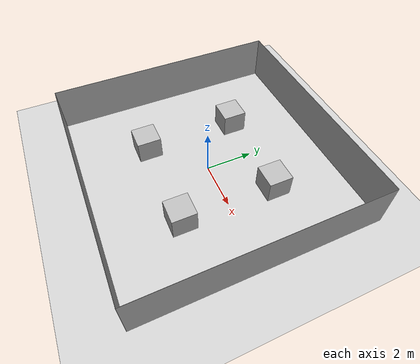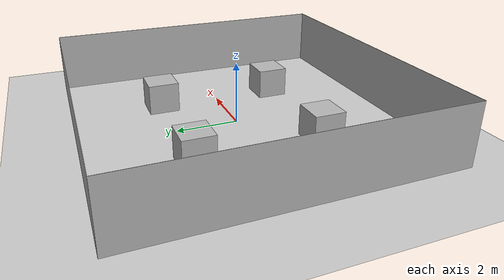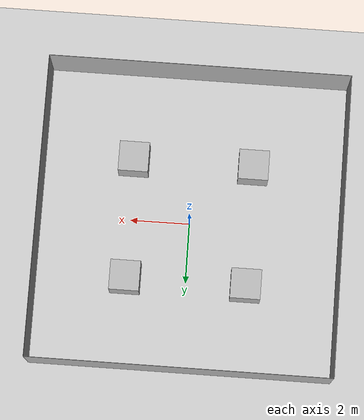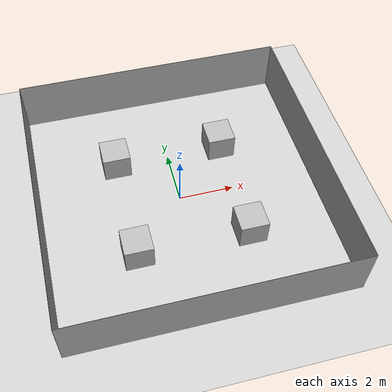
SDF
<sdf version='1.9'>
  <world name='small'>
    <physics name='1ms' type='ignored'>
      <max_step_size>0.003</max_step_size>
      <real_time_factor>1</real_time_factor>
      <real_time_update_rate>1000</real_time_update_rate>
    </physics>

    <plugin name='ignition::gazebo::systems::Physics' filename='ignition-gazebo-physics-system'/>
    <plugin name='ignition::gazebo::systems::UserCommands' filename='ignition-gazebo-user-commands-system'/>
    <plugin name='ignition::gazebo::systems::SceneBroadcaster' filename='ignition-gazebo-scene-broadcaster-system'/>
    <plugin name='ignition::gazebo::systems::Contact' filename='ignition-gazebo-contact-system'/>

    <gravity>0 0 -9.8</gravity>
    <magnetic_field>6e-06 2.3e-05 -4.2e-05</magnetic_field>
    <atmosphere type='adiabatic'/>
    <scene>
      <ambient>0.4 0.4 0.4 1</ambient>
      <background>0.7 0.7 0.7 1</background>
      <shadows>true</shadows>
    </scene>

    <!-- 地面 -->
    <model name='ground_plane'>
      <static>true</static>
      <link name='link'>
        <collision name='collision'>
          <geometry><plane><normal>0 0 1</normal><size>100 100</size></plane></geometry>
        </collision>
        <visual name='visual'>
          <geometry><plane><normal>0 0 1</normal><size>100 100</size></plane></geometry>
          <material>
            <ambient>0.8 0.8 0.8 1</ambient>
            <diffuse>0.8 0.8 0.8 1</diffuse>
            <specular>0.8 0.8 0.8 1</specular>
          </material>
        </visual>
      </link>
    </model>

    <!-- 邊框：10x10，牆高 2m，關陰影 -->
    <model name='border'>
      <pose>0 0 0 0 0 0</pose>
      <static>true</static>

      <link name='wall1'>
        <pose>-5.005 0 1 0 0 0</pose>
        <collision name='wall1_collision'>
          <geometry><box><size>0.01 10.01 2</size></box></geometry>
        </collision>
        <visual name='wall1_visual'>
          <geometry><box><size>0.01 10.01 2</size></box></geometry>
          <cast_shadows>false</cast_shadows>
        </visual>
      </link>

      <link name='wall2'>
        <pose>5.005 0 1 0 0 0</pose>
        <collision name='wall2_collision'>
          <geometry><box><size>0.01 10.01 2</size></box></geometry>
        </collision>
        <visual name='wall2_visual'>
          <geometry><box><size>0.01 10.01 2</size></box></geometry>
          <cast_shadows>false</cast_shadows>
        </visual>
      </link>

      <link name='wall3'>
        <pose>0 5.005 1 0 0 0</pose>
        <collision name='wall3_collision'>
          <geometry><box><size>10.01 0.01 2</size></box></geometry>
        </collision>
        <visual name='wall3_visual'>
          <geometry><box><size>10.01 0.01 2</size></box></geometry>
          <cast_shadows>false</cast_shadows>
        </visual>
      </link>

      <link name='wall4'>
        <pose>0 -5.005 1 0 0 0</pose>
        <collision name='wall4_collision'>
          <geometry><box><size>10.01 0.01 2</size></box></geometry>
        </collision>
        <visual name='wall4_visual'>
          <geometry><box><size>10.01 0.01 2</size></box></geometry>
          <cast_shadows>false</cast_shadows>
        </visual>
      </link>
    </model>

    <!-- 四個 1x1x1 靜態方塊，放在框內 -->
    <model name='box1'>
      <static>true</static>
      <pose>2 2 0.5 0 0 0</pose>
      <link name='link'>
        <collision name='col'><geometry><box><size>1 1 1</size></box></geometry></collision>
        <visual name='vis'><geometry><box><size>1 1 1</size></box></geometry></visual>
      </link>
    </model>
    <model name='box2'>
      <static>true</static>
      <pose>-2 2 0.5 0 0 0</pose>
      <link name='link'>
        <collision name='col'><geometry><box><size>1 1 1</size></box></geometry></collision>
        <visual name='vis'><geometry><box><size>1 1 1</size></box></geometry></visual>
      </link>
    </model>
    <model name='box3'>
      <static>true</static>
      <pose>-2 -2 0.5 0 0 0</pose>
      <link name='link'>
        <collision name='col'><geometry><box><size>1 1 1</size></box></geometry></collision>
        <visual name='vis'><geometry><box><size>1 1 1</size></box></geometry></visual>
      </link>
    </model>
    <model name='box4'>
      <static>true</static>
      <pose>2 -2 0.5 0 0 0</pose>
      <link name='link'>
        <collision name='col'><geometry><box><size>1 1 1</size></box></geometry></collision>
        <visual name='vis'><geometry><box><size>1 1 1</size></box></geometry></visual>
      </link>
    </model>

    <!-- 太陽光關閉陰影，避免十字陰影 -->
    <light name='sun' type='directional'>
      <pose>0 0 10 0 0 0</pose>
      <direction>0 0 -1</direction>
      <cast_shadows>false</cast_shadows>
    </light>
  </world>
</sdf>
